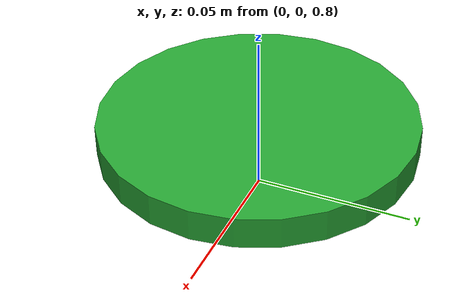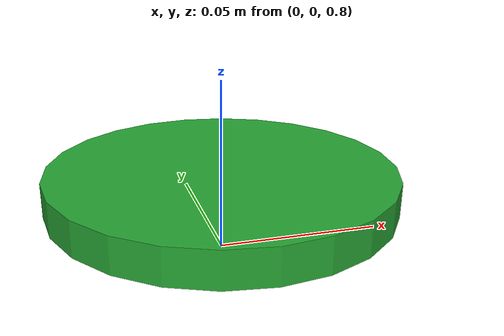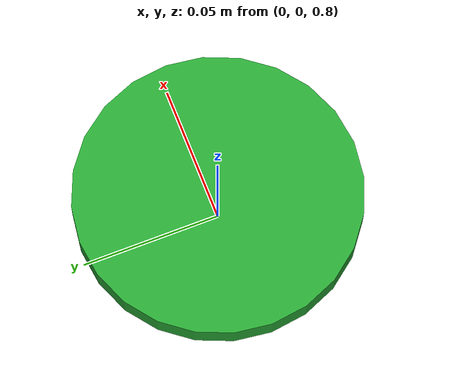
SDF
<sdf version="1.7">
 <world name="default">
  <model name="ground_plane">
   <static>1</static>
   <link name="link">
    <collision name="collision">
     <geometry><plane><normal>0 0 1</normal><size>100 100</size></plane></geometry>
     <surface>
      <contact><collide_bitmask>65535</collide_bitmask></contact>
      <friction><ode><mu>100</mu><mu2>50</mu2></ode></friction>
     </surface>
    </collision>
    <visual name="visual">
     <cast_shadows>0</cast_shadows>
     <geometry><plane><normal>0 0 1</normal><size>100 100</size></plane></geometry>
     <material>
      <script><uri>file://media/materials/scripts/gazebo.material</uri><name>Gazebo/Grey</name></script>
     </material>
    </visual>
   </link>
  </model>
  <light name="sun" type="directional">
   <pose>0 0 10 0 -0 0</pose>
   <diffuse>0.8 0.8 0.8 1</diffuse>
   <specular>0.2 0.2 0.2 1</specular>
   <attenuation>
    <range>1000</range>
    <constant>0.9</constant>
    <linear>0.01</linear>
    <quadratic>0.001</quadratic>
   </attenuation>
   <direction>-0.5 0.1 -0.9</direction>
   <spot><inner_angle>0</inner_angle><outer_angle>0</outer_angle><falloff>0</falloff></spot>
  </light>
  <gravity>0 0 -9.8</gravity>
  <magnetic_field>6e-06 2.3e-05 -4.2e-05</magnetic_field>
  <atmosphere type="adiabatic"/>
  <physics type="ode">
   <max_step_size>0.001</max_step_size>
   <real_time_factor>1</real_time_factor>
   <real_time_update_rate>1000</real_time_update_rate>
  </physics>
  <scene><ambient>0.4 0.4 0.4 1</ambient><background>0.7 0.7 0.7 1</background><shadows>1</shadows></scene>
  <spherical_coordinates>
   <surface_model>EARTH_WGS84</surface_model>
   <latitude_deg>0</latitude_deg>
   <longitude_deg>0</longitude_deg>
   <elevation>0</elevation>
   <heading_deg>0</heading_deg>
  </spherical_coordinates>
  <model name="unit_box">
   <link name="link">
    <inertial>
     <mass>1</mass>
     <inertia>
      <ixx>0.166667</ixx>
      <ixy>0</ixy>
      <ixz>0</ixz>
      <iyy>0.166667</iyy>
      <iyz>0</iyz>
      <izz>0.166667</izz>
     </inertia>
    </inertial>
    <pose>-0.078024 0.213815 0.340557 0 -0 0</pose>
    <collision name="collision">
     <geometry><box><size>1.2 2 0.001</size></box></geometry>
     <surface>
      <friction>
       <ode><mu>0</mu><mu2>0</mu2><fdir1>0 0 0</fdir1><slip1>0</slip1><slip2>0</slip2></ode>
       <torsional>
        <coefficient>1</coefficient>
        <patch_radius>0</patch_radius>
        <surface_radius>0</surface_radius>
        <use_patch_radius>1</use_patch_radius>
        <ode><slip>0</slip></ode>
       </torsional>
      </friction>
      <bounce><restitution_coefficient>0</restitution_coefficient><threshold>1e+06</threshold></bounce>
      <contact>
       <collide_without_contact>0</collide_without_contact>
       <collide_without_contact_bitmask>1</collide_without_contact_bitmask>
       <collide_bitmask>1</collide_bitmask>
       <ode>
        <soft_cfm>0</soft_cfm>
        <soft_erp>0.2</soft_erp>
        <kp>1e+13</kp>
        <kd>1</kd>
        <max_vel>0.01</max_vel>
        <min_depth>0</min_depth>
       </ode>
       <bullet>
        <split_impulse>1</split_impulse>
        <split_impulse_penetration_threshold>-0.01</split_impulse_penetration_threshold>
        <soft_cfm>0</soft_cfm>
        <soft_erp>0.2</soft_erp>
        <kp>1e+13</kp>
        <kd>1</kd>
       </bullet>
      </contact>
     </surface>
    </collision>
   </link>
   <static>1</static>
   <pose>0.077043 -0.216906 0.5 0 -0 0</pose>
  </model>
  <model name="puck">
   <link name="link">
    <inertial>
     <mass>0.00879646</mass>
     <inertia>
      <ixx>3.482e-05</ixx>
      <ixy>0</ixy>
      <ixz>0</ixz>
      <iyy>3.482e-05</iyy>
      <iyz>0</iyz>
      <izz>6.872e-05</izz>
     </inertia>
    </inertial>
    <visual name="visual">
     <geometry><cylinder><radius>0.05</radius><length>0.01</length></cylinder></geometry>
     <material>
      <lighting>1</lighting>
      <script><uri>file://media/materials/scripts/gazebo.material</uri><name>Gazebo/Green</name></script>
      <shader type="pixel"><normal_map>__default__</normal_map></shader>
     </material>
    </visual>
    <collision name="collision">
     <geometry><cylinder><radius>0.05</radius><length>0.01</length></cylinder></geometry>
     <surface>
      <friction>
       <ode><mu>0.0001</mu><mu2>0.0001</mu2><fdir1>0 0 0</fdir1><slip1>0</slip1><slip2>0</slip2></ode>
       <torsional>
        <coefficient>1</coefficient>
        <patch_radius>0</patch_radius>
        <surface_radius>0</surface_radius>
        <use_patch_radius>1</use_patch_radius>
        <ode><slip>0</slip></ode>
       </torsional>
      </friction>
      <bounce><restitution_coefficient>1</restitution_coefficient><threshold>1</threshold></bounce>
      <contact>
       <collide_without_contact>0</collide_without_contact>
       <collide_without_contact_bitmask>1</collide_without_contact_bitmask>
       <collide_bitmask>1</collide_bitmask>
       <ode>
        <soft_cfm>0</soft_cfm>
        <soft_erp>0.2</soft_erp>
        <kp>10000</kp>
        <kd>0</kd>
        <max_vel>100</max_vel>
        <min_depth>0</min_depth>
       </ode>
       <bullet>
        <split_impulse>1</split_impulse>
        <split_impulse_penetration_threshold>-0.01</split_impulse_penetration_threshold>
        <soft_cfm>0</soft_cfm>
        <soft_erp>0.2</soft_erp>
        <kp>10000</kp>
        <kd>0</kd>
       </bullet>
      </contact>
     </surface>
    </collision>
   </link>
   <static>0</static>
   <pose>0 0 0.82 0 0 0</pose>
  </model>
 </world>
</sdf>
